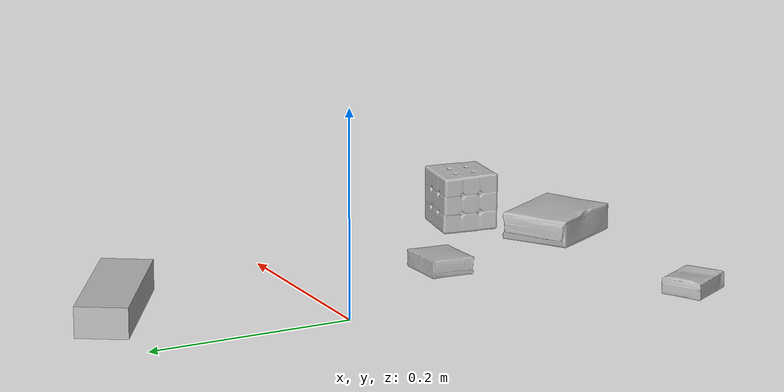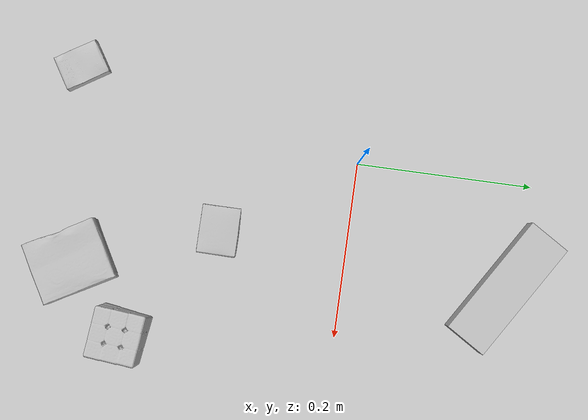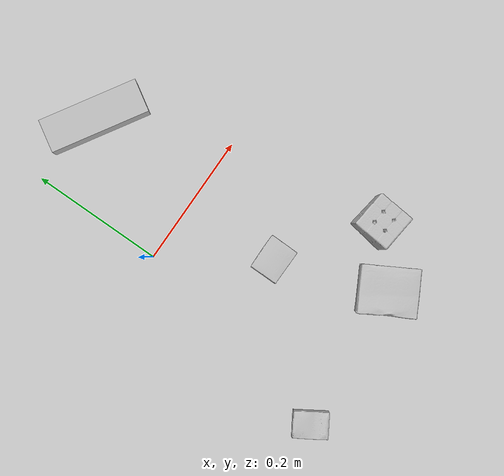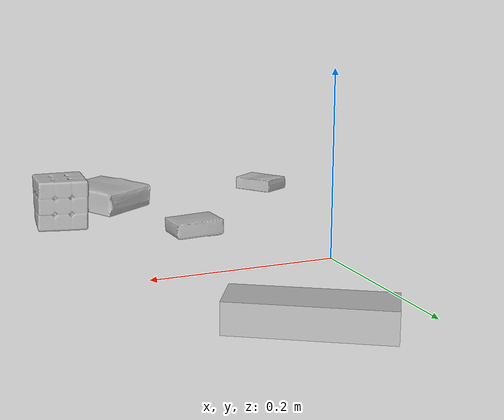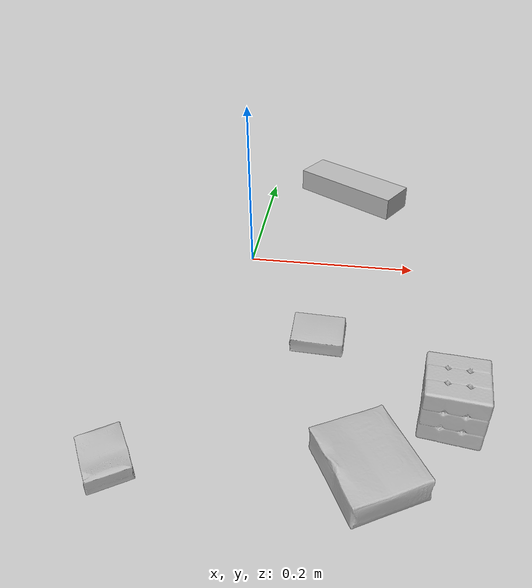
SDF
<sdf version="1.4">
  <world name="default">
    <light name="light1" type="point">
      <pose>0 0 1 0 0 0</pose>
      <diffuse>3 3 3 1</diffuse>
      <specular>3 3 3 1</specular>
    </light>
    <light name="light2" type="point">
      <pose>0 0.5 2 0 0 0</pose>
      <diffuse>1 1 1 1</diffuse>
      <specular>1 1 1 1</specular>
    </light>
    <light name="light3" type="point">
      <pose>0 0.5 2 0 0 0</pose>
      <diffuse>3 3 3 1</diffuse>
      <specular>3 3 3 1</specular>
    </light>
    <scene>
      <ambient>0.7 0.7 0.7</ambient>
    </scene>
    <model name="box1">
      <link name="link_box1">
        <collision name="default">
          <geometry>
            <mesh>
              <uri>model://jenga/collision_meshes/collision.obj</uri>
              <scale>1.0 1.0 1.0</scale>
            </mesh>
          </geometry>
          <surface>
            <friction>
              <ode>
                <mu>0.5</mu>
                <mu2>0.5</mu2>
              </ode>
            </friction>
          <contact>
        <ode>
            <max_vel>0</max_vel>
            <min_depth>0.0001</min_depth>
            <kp>1e8</kp>
        </ode>
    </contact></surface>
        </collision>
        <visual name="default">
          <geometry>
            <mesh>
              <uri>model://jenga/visual_meshes/visual.dae</uri>
              <scale>1.0 1.0 1.0</scale>
            </mesh>
          </geometry>
        </visual>
        <inertial>
          <mass>0.2062758058309555</mass>
          <pose>-2.502855807051674e-07 -0.00010250010382151231 -4.092339804628864e-05 0.0 -7.342154049184251e-07 0.0</pose>
          <inertia>
            <ixx>5.7081514e-05</ixx>
            <iyy>0.0003867828</iyy>
            <izz>0.00041292355</izz>
            <ixy>0</ixy>
            <ixz>0</ixz>
            <iyz>0</iyz>
          </inertia>
        </inertial>
      </link>
      <pose>0.11763004958629608 0.18329809606075287 0.014999995939433575 -6.7894662193978305e-09 5.173396657477587e-09 -0.554203366072366</pose>
    </model>
    <model name="box2">
      <link name="link_box2">
        <collision name="default">
          <geometry>
            <mesh>
              <uri>model://cracker_box/collision_meshes/collision.obj</uri>
              <scale>0.25 0.25 0.25</scale>
            </mesh>
          </geometry>
          <surface>
            <friction>
              <ode>
                <mu>0.5</mu>
                <mu2>0.5</mu2>
              </ode>
            </friction>
          <contact>
        <ode>
            <max_vel>0</max_vel>
            <min_depth>0.0001</min_depth>
            <kp>1e8</kp>
        </ode>
    </contact></surface>
        </collision>
        <visual name="default">
          <geometry>
            <mesh>
              <uri>model://cracker_box/visual_meshes/visual.dae</uri>
              <scale>0.25 0.25 0.25</scale>
            </mesh>
          </geometry>
        </visual>
        <inertial>
          <mass>0.023937078192830086</mass>
          <pose>0.00023660386796109378 6.358562677633017e-05 -0.00042573839891701937 -0.00031620780222672953 -0.011106490531565828 0.0025467947702904154</pose>
          <inertia>
            <ixx>3.8053279e-06</ixx>
            <iyy>6.2833433e-06</iyy>
            <izz>8.966907e-06</izz>
            <ixy>0</ixy>
            <ixz>0</ixz>
            <iyz>0</iyz>
          </inertia>
        </inertial>
      </link>
      <pose>-0.06861590594053268 -0.32719922065734863 0.009096031077206135 -0.014050667345375219 -0.005016612953331162 2.124059053825939</pose>
    </model>
    <model name="box3">
      <link name="link_box3">
        <collision name="default">
          <geometry>
            <mesh>
              <uri>model://pudding_box/collision_meshes/collision.obj</uri>
              <scale>0.5 0.5 0.5</scale>
            </mesh>
          </geometry>
          <surface>
            <friction>
              <ode>
                <mu>0.5</mu>
                <mu2>0.5</mu2>
              </ode>
            </friction>
          <contact>
        <ode>
            <max_vel>0</max_vel>
            <min_depth>0.0001</min_depth>
            <kp>1e8</kp>
        </ode>
    </contact></surface>
        </collision>
        <visual name="default">
          <geometry>
            <mesh>
              <uri>model://pudding_box/visual_meshes/visual.dae</uri>
              <scale>0.5 0.5 0.5</scale>
            </mesh>
          </geometry>
        </visual>
        <inertial>
          <mass>0.06577561050653458</mass>
          <pose>0.0002447410661261529 0.00040339428232982755 -0.00025944135268218815 0.005213102261421096 -0.006603797796883786 0.020079827023418362</pose>
          <inertia>
            <ixx>1.8588986e-05</ixx>
            <iyy>1.2506803e-05</iyy>
            <izz>2.7451497e-05</izz>
            <ixy>0</ixy>
            <ixz>0</ixz>
            <iyz>0</iyz>
          </inertia>
        </inertial>
      </link>
      <pose>0.0973239615559578 -0.14605802297592163 0.00986290443688631 0.022348558847823777 -0.011391741955588019 1.562276949766595</pose>
    </model>
    <model name="box4">
      <link name="link_box4">
        <collision name="default">
          <geometry>
            <mesh>
              <uri>model://gelatin_box/collision_meshes/collision.obj</uri>
              <scale>1.0 1.0 1.0</scale>
            </mesh>
          </geometry>
          <surface>
            <friction>
              <ode>
                <mu>0.5</mu>
                <mu2>0.5</mu2>
              </ode>
            </friction>
          <contact>
        <ode>
            <max_vel>0</max_vel>
            <min_depth>0.0001</min_depth>
            <kp>1e8</kp>
        </ode>
    </contact></surface>
        </collision>
        <visual name="default">
          <geometry>
            <mesh>
              <uri>model://gelatin_box/visual_meshes/visual.dae</uri>
              <scale>1.0 1.0 1.0</scale>
            </mesh>
          </geometry>
        </visual>
        <inertial>
          <mass>0.21051041781902313</mass>
          <pose>0.000431961816502735 0.00011156871914863586 -0.0003640321083366871 -0.0010503719683328595 -0.0047558182256164224 0.016440557608480007</pose>
          <inertia>
            <ixx>0.0001486032</ixx>
            <iyy>0.00010614647</iyy>
            <izz>0.00022620716</izz>
            <ixy>0</ixy>
            <ixz>0</ixz>
            <iyz>0</iyz>
          </inertia>
        </inertial>
      </link>
      <pose>0.15420056879520416 -0.30731791257858276 0.015168312937021255 0.005596663721299682 -0.007303657466356992 -2.641795077136898</pose>
    </model>
    <model name="box5">
      <link name="link_box5">
        <collision name="default">
          <geometry>
            <mesh>
              <uri>model://rubiks_cube/collision_meshes/collision.obj</uri>
              <scale>1.0 1.0 1.0</scale>
            </mesh>
          </geometry>
          <surface>
            <friction>
              <ode>
                <mu>0.5</mu>
                <mu2>0.5</mu2>
              </ode>
            </friction>
          <contact>
        <ode>
            <max_vel>0</max_vel>
            <min_depth>0.0001</min_depth>
            <kp>1e8</kp>
        </ode>
    </contact></surface>
        </collision>
        <visual name="default">
          <geometry>
            <mesh>
              <uri>model://rubiks_cube/visual_meshes/visual.dae</uri>
              <scale>1.0 1.0 1.0</scale>
            </mesh>
          </geometry>
        </visual>
        <inertial>
          <mass>0.13810032606124878</mass>
          <pose>2.6721041649580002e-05 5.256967051536776e-05 -7.264316082000732e-06 -0.05467240103362065 -0.09813937396878175 -0.03445717948301123</pose>
          <inertia>
            <ixx>7.63097e-05</ixx>
            <iyy>7.595384e-05</iyy>
            <izz>7.694205e-05</izz>
            <ixy>0</ixy>
            <ixz>0</ixz>
            <iyz>0</iyz>
          </inertia>
        </inertial>
      </link>
      <pose>0.22811667621135712 -0.23997075855731964 0.02867899462580681 -1.8496851109996954e-06 4.558802851135946e-07 -1.6812584611753147</pose>
    </model>
  <physics type="ode">
      <max_contacts>50</max_contacts>
      <ode>
        <solver>
          <type>quick</type>
          <iters>75</iters>
        </solver>
        <constraints>
          <contact_max_correcting_vel>0</contact_max_correcting_vel>
          <contact_surface_layer>0</contact_surface_layer>
        </constraints>
      </ode>
    </physics></world>
</sdf>
